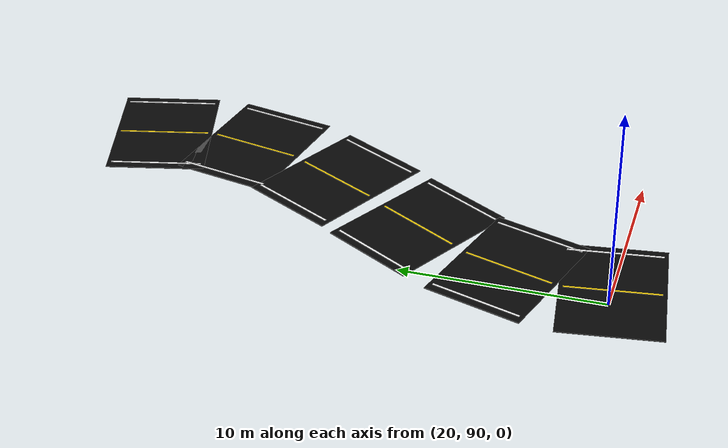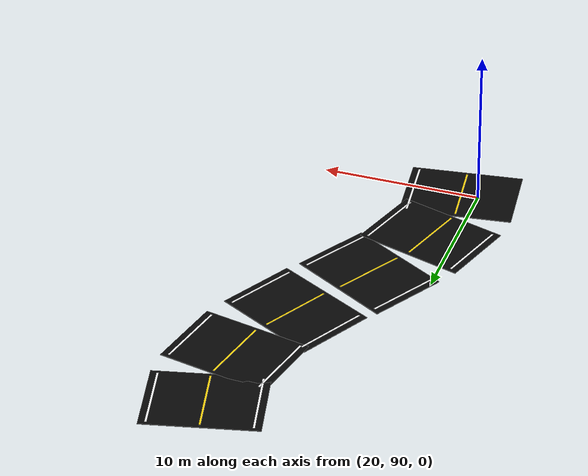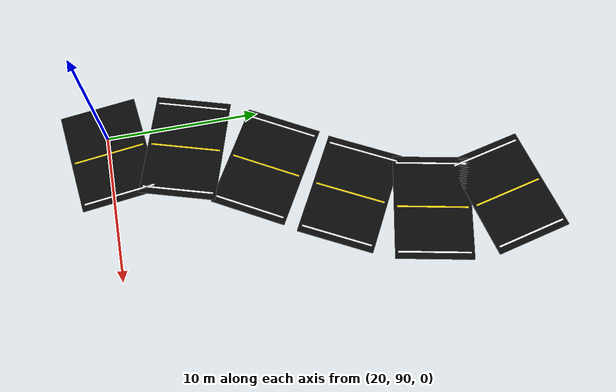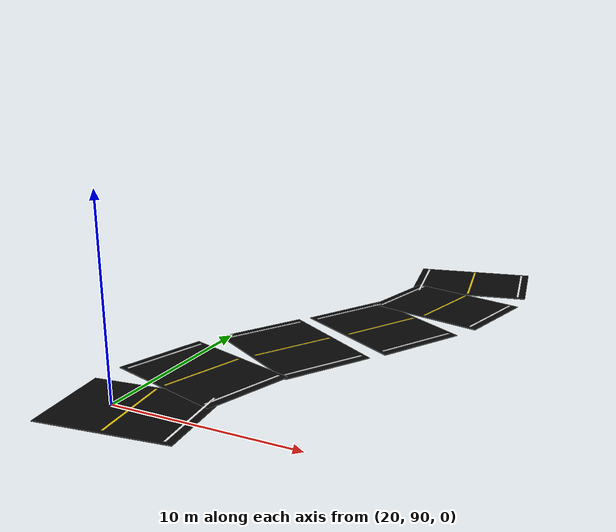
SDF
<sdf version="1.6">
 <world name="curved_road_world">
  <include><uri>model://sun</uri></include>
  <model name="road_small_s_curve_06">
   <static>true</static>
   <pose>21.090 90.000 0.015 0 0 1.696606</pose>
   <link name="road_link">
    <collision name="road_collision"><geometry><box><size>5.000 7.000 0.04</size></box></geometry></collision>
    <visual name="road_visual">
     <geometry><box><size>5.000 7.000 0.04</size></box></geometry>
     <material>
      <ambient>0.025 0.025 0.025 1</ambient>
      <diffuse>0.035 0.035 0.035 1</diffuse>
      <specular>0.01 0.01 0.01 1</specular>
     </material>
    </visual>
   </link>
  </model>
  <model name="road_small_s_curve_07">
   <static>true</static>
   <pose>21.564 95.000 0.015 0 0 1.272700</pose>
   <link name="road_link">
    <collision name="road_collision"><geometry><box><size>5.000 7.000 0.04</size></box></geometry></collision>
    <visual name="road_visual">
     <geometry><box><size>5.000 7.000 0.04</size></box></geometry>
     <material>
      <ambient>0.025 0.025 0.025 1</ambient>
      <diffuse>0.035 0.035 0.035 1</diffuse>
      <specular>0.01 0.01 0.01 1</specular>
     </material>
    </visual>
   </link>
  </model>
  <model name="road_small_s_curve_08">
   <static>true</static>
   <pose>23.882 100.000 0.015 0 0 1.048134</pose>
   <link name="road_link">
    <collision name="road_collision"><geometry><box><size>5.000 7.000 0.04</size></box></geometry></collision>
    <visual name="road_visual">
     <geometry><box><size>5.000 7.000 0.04</size></box></geometry>
     <material>
      <ambient>0.025 0.025 0.025 1</ambient>
      <diffuse>0.035 0.035 0.035 1</diffuse>
      <specular>0.01 0.01 0.01 1</specular>
     </material>
    </visual>
   </link>
  </model>
  <model name="road_small_s_curve_09">
   <static>true</static>
   <pose>26.800 105.000 0.015 0 0 1.078918</pose>
   <link name="road_link">
    <collision name="road_collision"><geometry><box><size>5.000 7.000 0.04</size></box></geometry></collision>
    <visual name="road_visual">
     <geometry><box><size>5.000 7.000 0.04</size></box></geometry>
     <material>
      <ambient>0.025 0.025 0.025 1</ambient>
      <diffuse>0.035 0.035 0.035 1</diffuse>
      <specular>0.01 0.01 0.01 1</specular>
     </material>
    </visual>
   </link>
  </model>
  <model name="road_small_s_curve_10">
   <static>true</static>
   <pose>28.752 110.000 0.015 0 0 1.365738</pose>
   <link name="road_link">
    <collision name="road_collision"><geometry><box><size>5.000 7.000 0.04</size></box></geometry></collision>
    <visual name="road_visual">
     <geometry><box><size>5.000 7.000 0.04</size></box></geometry>
     <material>
      <ambient>0.025 0.025 0.025 1</ambient>
      <diffuse>0.035 0.035 0.035 1</diffuse>
      <specular>0.01 0.01 0.01 1</specular>
     </material>
    </visual>
   </link>
  </model>
  <model name="road_small_s_curve_11">
   <static>true</static>
   <pose>28.690 115.000 0.015 0 0 1.798240</pose>
   <link name="road_link">
    <collision name="road_collision"><geometry><box><size>5.000 7.000 0.04</size></box></geometry></collision>
    <visual name="road_visual">
     <geometry><box><size>5.000 7.000 0.04</size></box></geometry>
     <material>
      <ambient>0.025 0.025 0.025 1</ambient>
      <diffuse>0.035 0.035 0.035 1</diffuse>
      <specular>0.01 0.01 0.01 1</specular>
     </material>
    </visual>
   </link>
  </model>
  <model name="right_edge_small_s_curve_06">
   <static>true</static>
   <pose>24.116 90.383 0.050 0 0 1.696606</pose>
   <link name="line_link">
    <visual name="line_visual">
     <geometry><box><size>4.600 0.120 0.012</size></box></geometry>
     <material><ambient>1 1 1 1</ambient><diffuse>1 1 1 1</diffuse></material>
    </visual>
   </link>
  </model>
  <model name="center_line_small_s_curve_06">
   <static>true</static>
   <pose>21.090 90.000 0.050 0 0 1.696606</pose>
   <link name="line_link">
    <visual name="line_visual">
     <geometry><box><size>4.600 0.120 0.012</size></box></geometry>
     <material><ambient>1 0.85 0.05 1</ambient><diffuse>1 0.85 0.05 1</diffuse></material>
    </visual>
   </link>
  </model>
  <model name="left_edge_small_s_curve_07">
   <static>true</static>
   <pose>18.649 95.896 0.050 0 0 1.272700</pose>
   <link name="line_link">
    <visual name="line_visual">
     <geometry><box><size>4.600 0.120 0.012</size></box></geometry>
     <material><ambient>1 1 1 1</ambient><diffuse>1 1 1 1</diffuse></material>
    </visual>
   </link>
  </model>
  <model name="right_edge_small_s_curve_07">
   <static>true</static>
   <pose>24.480 94.104 0.050 0 0 1.272700</pose>
   <link name="line_link">
    <visual name="line_visual">
     <geometry><box><size>4.600 0.120 0.012</size></box></geometry>
     <material><ambient>1 1 1 1</ambient><diffuse>1 1 1 1</diffuse></material>
    </visual>
   </link>
  </model>
  <model name="center_line_small_s_curve_07">
   <static>true</static>
   <pose>21.564 95.000 0.050 0 0 1.272700</pose>
   <link name="line_link">
    <visual name="line_visual">
     <geometry><box><size>4.600 0.120 0.012</size></box></geometry>
     <material><ambient>1 0.85 0.05 1</ambient><diffuse>1 0.85 0.05 1</diffuse></material>
    </visual>
   </link>
  </model>
  <model name="left_edge_small_s_curve_08">
   <static>true</static>
   <pose>21.240 101.523 0.050 0 0 1.048134</pose>
   <link name="line_link">
    <visual name="line_visual">
     <geometry><box><size>4.600 0.120 0.012</size></box></geometry>
     <material><ambient>1 1 1 1</ambient><diffuse>1 1 1 1</diffuse></material>
    </visual>
   </link>
  </model>
  <model name="right_edge_small_s_curve_08">
   <static>true</static>
   <pose>26.525 98.477 0.050 0 0 1.048134</pose>
   <link name="line_link">
    <visual name="line_visual">
     <geometry><box><size>4.600 0.120 0.012</size></box></geometry>
     <material><ambient>1 1 1 1</ambient><diffuse>1 1 1 1</diffuse></material>
    </visual>
   </link>
  </model>
  <model name="center_line_small_s_curve_08">
   <static>true</static>
   <pose>23.882 100.000 0.050 0 0 1.048134</pose>
   <link name="line_link">
    <visual name="line_visual">
     <geometry><box><size>4.600 0.120 0.012</size></box></geometry>
     <material><ambient>1 0.85 0.05 1</ambient><diffuse>1 0.85 0.05 1</diffuse></material>
    </visual>
   </link>
  </model>
  <model name="left_edge_small_s_curve_09">
   <static>true</static>
   <pose>24.112 106.440 0.050 0 0 1.078918</pose>
   <link name="line_link">
    <visual name="line_visual">
     <geometry><box><size>4.600 0.120 0.012</size></box></geometry>
     <material><ambient>1 1 1 1</ambient><diffuse>1 1 1 1</diffuse></material>
    </visual>
   </link>
  </model>
  <model name="right_edge_small_s_curve_09">
   <static>true</static>
   <pose>29.489 103.560 0.050 0 0 1.078918</pose>
   <link name="line_link">
    <visual name="line_visual">
     <geometry><box><size>4.600 0.120 0.012</size></box></geometry>
     <material><ambient>1 1 1 1</ambient><diffuse>1 1 1 1</diffuse></material>
    </visual>
   </link>
  </model>
  <model name="center_line_small_s_curve_09">
   <static>true</static>
   <pose>26.800 105.000 0.050 0 0 1.078918</pose>
   <link name="line_link">
    <visual name="line_visual">
     <geometry><box><size>4.600 0.120 0.012</size></box></geometry>
     <material><ambient>1 0.85 0.05 1</ambient><diffuse>1 0.85 0.05 1</diffuse></material>
    </visual>
   </link>
  </model>
  <model name="left_edge_small_s_curve_10">
   <static>true</static>
   <pose>25.766 110.621 0.050 0 0 1.365738</pose>
   <link name="line_link">
    <visual name="line_visual">
     <geometry><box><size>4.600 0.120 0.012</size></box></geometry>
     <material><ambient>1 1 1 1</ambient><diffuse>1 1 1 1</diffuse></material>
    </visual>
   </link>
  </model>
  <model name="right_edge_small_s_curve_10">
   <static>true</static>
   <pose>31.738 109.379 0.050 0 0 1.365738</pose>
   <link name="line_link">
    <visual name="line_visual">
     <geometry><box><size>4.600 0.120 0.012</size></box></geometry>
     <material><ambient>1 1 1 1</ambient><diffuse>1 1 1 1</diffuse></material>
    </visual>
   </link>
  </model>
  <model name="center_line_small_s_curve_10">
   <static>true</static>
   <pose>28.752 110.000 0.050 0 0 1.365738</pose>
   <link name="line_link">
    <visual name="line_visual">
     <geometry><box><size>4.600 0.120 0.012</size></box></geometry>
     <material><ambient>1 0.85 0.05 1</ambient><diffuse>1 0.85 0.05 1</diffuse></material>
    </visual>
   </link>
  </model>
  <model name="left_edge_small_s_curve_11">
   <static>true</static>
   <pose>25.719 114.312 0.050 0 0 1.798240</pose>
   <link name="line_link">
    <visual name="line_visual">
     <geometry><box><size>4.600 0.120 0.012</size></box></geometry>
     <material><ambient>1 1 1 1</ambient><diffuse>1 1 1 1</diffuse></material>
    </visual>
   </link>
  </model>
  <model name="right_edge_small_s_curve_11">
   <static>true</static>
   <pose>31.662 115.688 0.050 0 0 1.798240</pose>
   <link name="line_link">
    <visual name="line_visual">
     <geometry><box><size>4.600 0.120 0.012</size></box></geometry>
     <material><ambient>1 1 1 1</ambient><diffuse>1 1 1 1</diffuse></material>
    </visual>
   </link>
  </model>
  <model name="center_line_small_s_curve_11">
   <static>true</static>
   <pose>28.690 115.000 0.050 0 0 1.798240</pose>
   <link name="line_link">
    <visual name="line_visual">
     <geometry><box><size>4.600 0.120 0.012</size></box></geometry>
     <material><ambient>1 0.85 0.05 1</ambient><diffuse>1 0.85 0.05 1</diffuse></material>
    </visual>
   </link>
  </model>
 </world>
</sdf>
